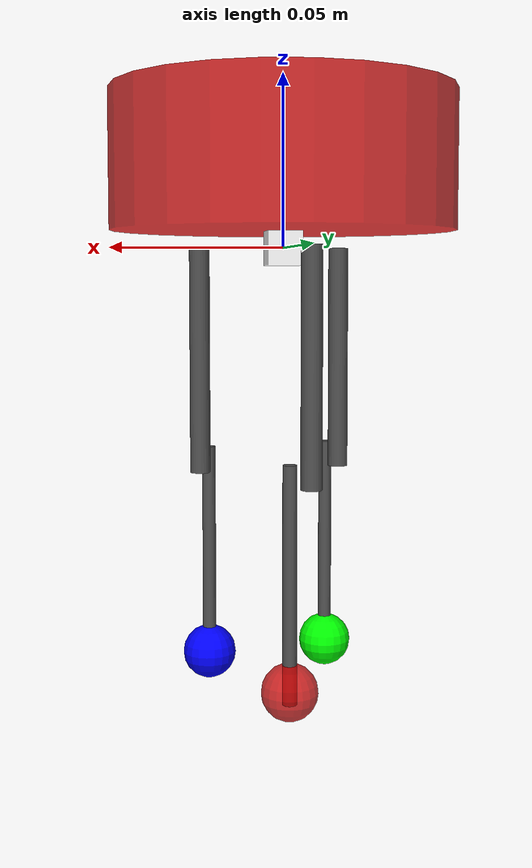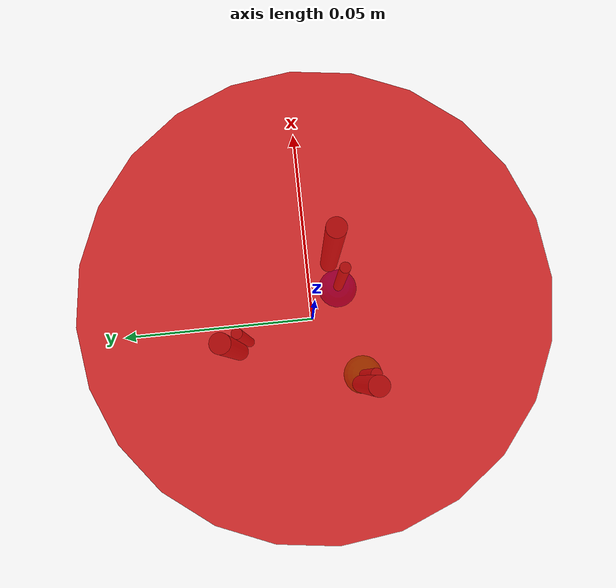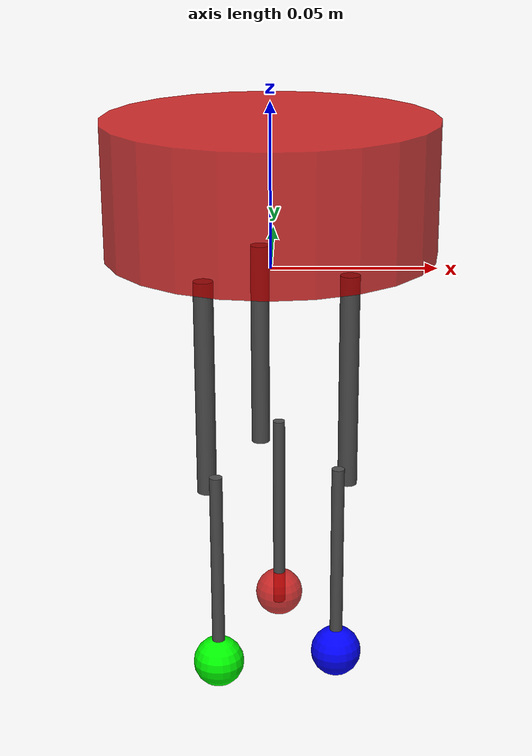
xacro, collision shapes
<?xml version="1.0"?>
<robot xmlns:xacro="http://www.ros.org/wiki/xacro" name="gurdy">
  <material name="red">
    <color rgba="0.8 0.0 0.0 0.8" />
  </material>
  <material name="black">
    <color rgba="1 1 1 0.8" />
  </material>
  <material name="gray">
    <color rgba="0.3 0.3 0.3 1" />
  </material>
  <material name="blue">
    <color rgba="0.0 0.0 1.0 1" />
  </material>
  <material name="green">
    <color rgba="0.0 1.0 0.0 1" />
  </material>
  <material name="pink">
    <color rgba="0.254 0.127 0.156 1" />
  </material>

  <xacro:property name="negligible_mass" value="0.001" />

  <xacro:property name="base_mass" value="0.001" />
  <xacro:property name="base_dim_x" value="0.01" />
  <xacro:property name="base_dim_y" value="0.01" />
  <xacro:property name="base_dim_z" value="0.01" />

  <xacro:property name="head_mass" value="0.01" />
  <xacro:property name="head_dim_radius" value="0.05" />
  <xacro:property name="head_dim_lenght" value="0.04" />

  <xacro:property name="upper_leg_mass" value="0.01" />
  <xacro:property name="upper_leg_dim_radius" value="0.003" />
  <xacro:property name="upper_leg_dim_lenght" value="0.067" />
  <xacro:property name="lower_leg_mass" value="0.01" />
  <xacro:property name="lower_leg_dim_radius" value="0.002" />
  <xacro:property name="lower_leg_dim_lenght" value="0.067" />

  <xacro:property name="foot_mass" value="0.01" />
  <xacro:property name="foot_radius" value="0.008" />

  <xacro:macro name="default_origin">
    <origin xyz="0 0 0" rpy="0 0 0"/>
  </xacro:macro>
  <xacro:macro name="box_inertial" params="m w d h *origin">
    <inertial>
      <xacro:insert_block name="origin"/>
      <mass value="${m}" />
      <inertia ixx="${(m/12.0)*(h*h+d*d)}" ixy="0.0" ixz="0.0" iyy="${(m/12.0)*(w*w+d*d)}" iyz="0.0" izz="${(m/12.0)*(w*w+h*h)}"/>
    </inertial>
  </xacro:macro>
  <xacro:macro name="cylinder_inertial" params="m r l *origin">
    <inertial>
      <xacro:insert_block name="origin"/>
      <mass value="${m}" />
      <inertia ixx="${(m/12.0)*(3*r*r+l*l)}" ixy="0.0" ixz="0.0" iyy="${(m/12.0)*(3*r*r+l*l)}" iyz="0.0" izz="${(1/2.0)*(m*r*r)}"/>
    </inertial>
  </xacro:macro>
  <xacro:macro name="solid_sphere_inertial" params="m r">
    <inertial>
      <xacro:default_origin/>
      <mass value="${m}" />
      <inertia ixx="${(2/5.0)*m*r*r}" ixy="0.0" ixz="0.0" iyy="${(2/5.0)*m*r*r}" iyz="0.0" izz="${(2/5.0)*m*r*r}"/>
    </inertial>
  </xacro:macro>
  <xacro:macro name="box_geometry" params="x y z">
    <geometry>
      <box size="${x} ${y} ${z}" />
    </geometry>
  </xacro:macro>
  <xacro:macro name="cylinder_geometry" params="r l">
    <geometry>
      <cylinder radius="${r}" length="${l}" />
    </geometry>
  </xacro:macro>
  <xacro:macro name="sphere_geometry" params="r">
    <geometry>
      <sphere radius="${r}"/>
    </geometry>
  </xacro:macro>
  <xacro:macro name="mesh_geometry" params="src">
    <geometry>
      <mesh filename="${src}" />
    </geometry>
  </xacro:macro>

  <xacro:macro name="leg_link" params="suffix m r l color mesh">
    <link name="${suffix}">
      <xacro:cylinder_inertial m="${m}" r="${r}" l="${l}">
        <origin rpy="0.0 0.0 0.0" xyz="0 0 -0.03" />
      </xacro:cylinder_inertial>
      <collision>
        <origin rpy="0.0 0.0 0.0" xyz="0 0 -0.03" />
        <xacro:cylinder_geometry r="${r}" l="${l}"/>
      </collision>
      <visual>
        <material name="${color}"/>
        <origin xyz="0 0.0 -0.06" rpy="0 0 0"/>
        <xacro:mesh_geometry src="${mesh}"/>
      </visual>
    </link>
  </xacro:macro>
  <xacro:macro name="leg_joint" params="suffix parent child *origin">
    <joint name="${suffix}" type="revolute">
      <parent link="${parent}" />
      <child link="${child}" />
      <xacro:insert_block name="origin"/>
      <limit effort="30" velocity="1.0" lower="-1.5707" upper="1.5707" />
      <axis xyz="0 1 0" />
    </joint>
  </xacro:macro>
  <xacro:macro name="foot_link" params="suffix m r color">
    <link name="${suffix}">
      <xacro:solid_sphere_inertial m="${m}" r="${r}"/>
      <collision>
        <xacro:default_origin/>
        <xacro:sphere_geometry r="${r}"/>
      </collision>
      <visual>
        <material name="${color}"/>
        <xacro:default_origin/>
        <xacro:sphere_geometry r="${r}"/>
      </visual>
    </link>
  </xacro:macro>
  <xacro:macro name="foot_joint" params="suffix parent child">
    <joint name="${suffix}" type="fixed">
      <parent link="${parent}" />
      <child link="${child}" />
      <origin xyz="0.0 0.0 -0.060" rpy="0 0 0" />
    </joint>
  </xacro:macro>

  <xacro:macro name="revolute_trans" params="trans_name type joint_name act_name hw_inter reduc">
    <transmission name="${trans_name}">
        <type>${type}</type>
        <joint name="${joint_name}">
            <hardwareInterface>${hw_inter}</hardwareInterface>
        </joint>
        <actuator name="${act_name}">
            <hardwareInterface>${hw_inter}</hardwareInterface>
            <mechanicalReduction>${reduc}</mechanicalReduction>
        </actuator>
    </transmission>
  </xacro:macro>

  <link name="base_link">
    <xacro:box_inertial m="${base_mass}" w="0" d="0" h="0">
      <xacro:default_origin/>
    </xacro:box_inertial>
    <collision>
      <xacro:default_origin/>
      <xacro:box_geometry x="${base_dim_x}" y="${base_dim_y}" z="${base_dim_z}"/>
    </collision>
    <visual>
      <material name="black"/>
      <xacro:default_origin/>
      <xacro:box_geometry x="${base_dim_x}" y="${base_dim_y}" z="${base_dim_z}"/>
    </visual>
  </link>
  <link name="head_link">
    <xacro:cylinder_inertial m="${head_mass}" r="${head_dim_radius}" l="${head_dim_lenght}">
      <origin rpy="0.0 0 0" xyz="0 0 0.02" />
    </xacro:cylinder_inertial>
    <collision>
      <origin rpy="0.0 0 0" xyz="0 0 0.02" />
      <xacro:cylinder_geometry r="${head_dim_radius}" l="${head_dim_lenght}"/>
    </collision>
    <visual>
      <material name="red"/>
      <xacro:default_origin />
      <xacro:mesh_geometry src="package://my_mira_description/models/gurdy/meshes/gurdy_head_v2.dae"/>
    </visual>
  </link>
  <joint name="base_head_joint" type="fixed">
    <parent link="base_link" />
    <child link="head_link" />
    <origin xyz="0.0 0.0 0.005" rpy="0 0 0" />
  </joint>

  <xacro:leg_link suffix="upper_leg_M1_link" m="${upper_leg_mass}" r="${upper_leg_dim_radius}" l="${upper_leg_dim_lenght}" color="gray" mesh="package://my_mira_description/models/gurdy/meshes/gurdy_higherleg_v2.dae"/>
  <xacro:leg_link suffix="upper_leg_M2_link" m="${upper_leg_mass}" r="${upper_leg_dim_radius}" l="${upper_leg_dim_lenght}" color="gray" mesh="package://my_mira_description/models/gurdy/meshes/gurdy_higherleg_v2.dae"/>
  <xacro:leg_link suffix="upper_leg_M3_link" m="${upper_leg_mass}" r="${upper_leg_dim_radius}" l="${upper_leg_dim_lenght}" color="gray" mesh="package://my_mira_description/models/gurdy/meshes/gurdy_higherleg_v2.dae"/>
  <xacro:leg_link suffix="lower_leg_M1_link" m="${lower_leg_mass}" r="${lower_leg_dim_radius}" l="${lower_leg_dim_lenght}" color="gray" mesh="package://my_mira_description/models/gurdy/meshes/gurdy_lowerleg_v2.dae"/>
  <xacro:leg_link suffix="lower_leg_M2_link" m="${lower_leg_mass}" r="${lower_leg_dim_radius}" l="${lower_leg_dim_lenght}" color="gray" mesh="package://my_mira_description/models/gurdy/meshes/gurdy_lowerleg_v2.dae"/>
  <xacro:leg_link suffix="lower_leg_M3_link" m="${lower_leg_mass}" r="${lower_leg_dim_radius}" l="${lower_leg_dim_lenght}" color="gray" mesh="package://my_mira_description/models/gurdy/meshes/gurdy_lowerleg_v2.dae"/>
  <xacro:foot_link suffix="foot_M1" m="${foot_mass}" r="${foot_radius}" color="blue"/>
  <xacro:foot_link suffix="foot_M2" m="${foot_mass}" r="${foot_radius}" color="green"/>
  <xacro:foot_link suffix="foot_M3" m="${foot_mass}" r="${foot_radius}" color="red"/>
  <xacro:leg_joint suffix="head_upper_leg_M1_joint" parent="head_link" child="upper_leg_M1_link">
    <origin xyz="0.02365 -0.0090359 -0.008" rpy="0 0 -0.5235" />
  </xacro:leg_joint>
  <xacro:leg_joint suffix="head_upper_leg_M2_joint" parent="head_link" child="upper_leg_M2_link">
    <origin xyz="-0.0195 -0.01569 -0.008" rpy="0 0 0.5235" />
  </xacro:leg_joint>
  <xacro:leg_joint suffix="head_upper_leg_M3_joint" parent="head_link" child="upper_leg_M3_link">
    <origin xyz="-0.004 0.025 -0.008" rpy="0 0 1.57079" />
  </xacro:leg_joint>
  <xacro:leg_joint suffix="upper_leg_M1_lower_leg_M1_joint" parent="upper_leg_M1_link" child="lower_leg_M1_link">
    <origin xyz="0.0 -0.006 -0.06" rpy="0 0 0" />
  </xacro:leg_joint>
  <xacro:leg_joint suffix="upper_leg_M2_lower_leg_M2_joint" parent="upper_leg_M2_link" child="lower_leg_M2_link">
    <origin xyz="0.0 -0.006 -0.06" rpy="0 0 0" />
  </xacro:leg_joint>
  <xacro:leg_joint suffix="upper_leg_M3_lower_leg_M3_joint" parent="upper_leg_M3_link" child="lower_leg_M3_link">
    <origin xyz="0.0 -0.006 -0.06" rpy="0 0 0" />
  </xacro:leg_joint>
  <xacro:foot_joint suffix="lower_leg_M1_foot_M1_joint" parent="lower_leg_M1_link" child="foot_M1"/>
  <xacro:foot_joint suffix="lower_leg_M2_foot_M2_joint" parent="lower_leg_M2_link" child="foot_M2"/>
  <xacro:foot_joint suffix="lower_leg_M3_foot_M3_joint" parent="lower_leg_M3_link" child="foot_M3"/>
  <xacro:revolute_trans trans_name="trans1" type="transmission_interface/SimpleTransmission" joint_name="head_upper_leg_M1_joint" act_name="motor1" hw_inter="hardware_interface/EffortJointInterface" reduc="1"/>
  <xacro:revolute_trans trans_name="trans2" type="transmission_interface/SimpleTransmission" joint_name="upper_leg_M1_lower_leg_M1_joint" act_name="motor2" hw_inter="hardware_interface/EffortJointInterface" reduc="1"/>
  <xacro:revolute_trans trans_name="trans3" type="transmission_interface/SimpleTransmission" joint_name="head_upper_leg_M2_joint" act_name="motor3" hw_inter="hardware_interface/EffortJointInterface" reduc="1"/>
  <xacro:revolute_trans trans_name="trans4" type="transmission_interface/SimpleTransmission" joint_name="upper_leg_M2_lower_leg_M2_joint" act_name="motor4" hw_inter="hardware_interface/EffortJointInterface" reduc="1"/>
  <xacro:revolute_trans trans_name="trans5" type="transmission_interface/SimpleTransmission" joint_name="head_upper_leg_M3_joint" act_name="motor5" hw_inter="hardware_interface/EffortJointInterface" reduc="1"/>
  <xacro:revolute_trans trans_name="trans6" type="transmission_interface/SimpleTransmission" joint_name="upper_leg_M3_lower_leg_M3_joint" act_name="motor6" hw_inter="hardware_interface/EffortJointInterface" reduc="1"/>

  <gazebo>
    <plugin name="gazebo_ros_control" filename="libgazebo_ros_control.so">
      <robotNamespace>/gurdy</robotNamespace>
      <robotSimType>gazebo_ros_control/DefaultRobotHWSim</robotSimType>
      <legacyModeNS>true</legacyModeNS>
    </plugin >
  </gazebo>
  <gazebo reference="head_link">
    <kp>10000.0</kp>
    <kd>10000.0</kd>
    <mu1>10.0</mu1>
    <mu2>10.0</mu2>
    <material>Gazebo/Red</material>
  </gazebo>
  <gazebo reference="base_link">
    <kp>10000.0</kp>
    <kd>10000.0</kd>
    <mu1>10.0</mu1>
    <mu2>10.0</mu2>
    <material>Gazebo/Black</material>
  </gazebo>
  <xacro:macro name="gazebo_reference_foot" params="ref color">
    <gazebo reference="${ref}">
      <kp>10000.0</kp>
      <kd>10000.0</kd>
      <mu1>10.0</mu1>
      <mu2>10.0</mu2>
      <material>Gazebo/${color}</material>
    </gazebo>
  </xacro:macro>
  <xacro:macro name="gazebo_reference_upper_leg" params="ref color">
    <gazebo reference="${ref}">
      <kp>10000.0</kp>
      <kd>10000.0</kd>
      <mu1>10.0</mu1>
      <mu2>10.0</mu2>
      <material>Gazebo/${color}</material>
    </gazebo>
  </xacro:macro>

  <xacro:gazebo_reference_upper_leg ref="upper_leg_M1_link" color="Black"/>
  <xacro:gazebo_reference_upper_leg ref="upper_leg_M2_link" color="Black"/>
  <xacro:gazebo_reference_upper_leg ref="upper_leg_M3_link" color="Black"/>
  <xacro:gazebo_reference_foot ref="foot_M1" color="Blue"/>
  <xacro:gazebo_reference_foot ref="foot_M2" color="Green"/>
  <xacro:gazebo_reference_foot ref="foot_M3" color="Red"/>
</robot>
